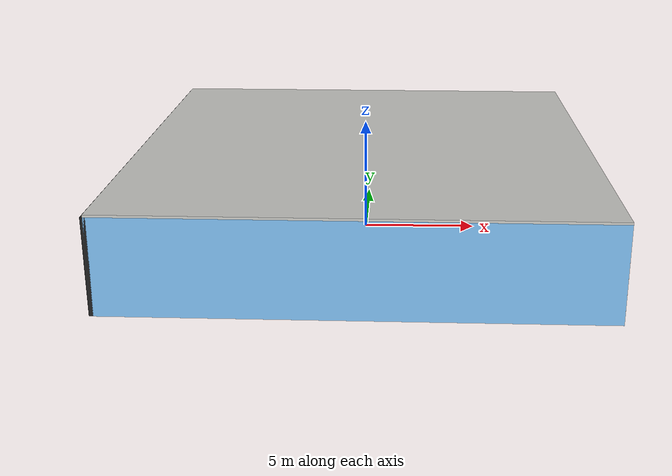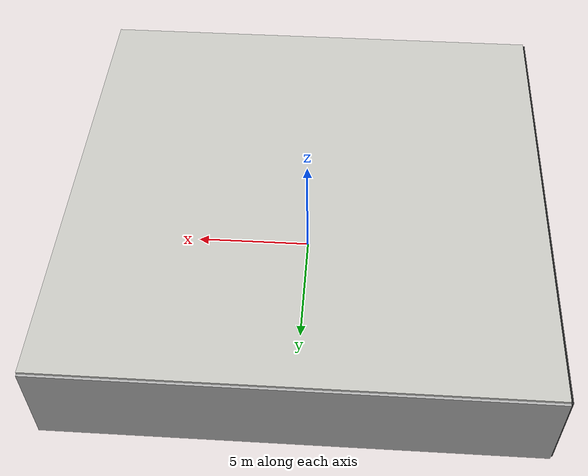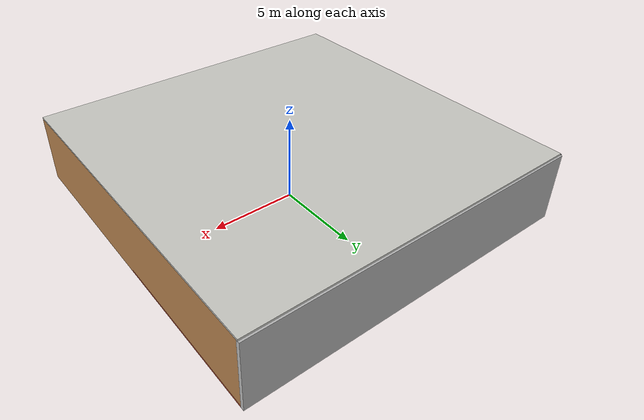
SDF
<sdf version="1.4">
 <world name="default">
  <physics type="ode">
   <max_step_size>0.001</max_step_size>
   <real_time_factor>1</real_time_factor>
   <real_time_update_rate>1000</real_time_update_rate>
   <gravity>0 0 -9.8</gravity>
  </physics>
  <scene><ambient>0.4 0.4 0.4 1</ambient><background>0.7 0.7 0.7 1</background><shadows>1</shadows></scene>
  <model name="Surrounding">
   <static>1</static>
   <link name="Ceiling">
    <collision name="Ceiling_Collision"><geometry><box><size>20 20 0.1</size></box></geometry></collision>
    <visual name="Ceiling_Visual">
     <geometry><box><size>20 20 0.1</size></box></geometry>
     <material>
      <script><uri>file://media/materials/scripts/gazebo.material</uri><name>Gazebo/CeilingTiled</name></script>
     </material>
    </visual>
    <pose>0 0 4.05 0 0 0</pose>
   </link>
   <link name="Wall_South">
    <collision name="Wall_South_Collision">
     <geometry><box><size>20 0 4</size></box></geometry>
     <pose>0 0 2 0 -0 0</pose>
    </collision>
    <visual name="Wall_South_Visual">
     <pose>0 0 2 0 -0 0</pose>
     <geometry><box><size>20 0 4</size></box></geometry>
     <material>
      <script><uri>file://media/materials/scripts/gazebo.material</uri><name>Gazebo/SkyBlue</name></script>
     </material>
    </visual>
    <velocity_decay><linear>0</linear><angular>0</angular></velocity_decay>
    <pose>0 -10 0 0 -0 0</pose>
   </link>
   <link name="Wall_East">
    <collision name="Wall_21_Collision">
     <geometry><box><size>20 0 4</size></box></geometry>
     <pose>0 0 2 0 -0 0</pose>
    </collision>
    <visual name="Wall_21_Visual">
     <pose>0 0 2 0 -0 0</pose>
     <geometry><box><size>20 0 4</size></box></geometry>
     <material>
      <script><uri>file://media/materials/scripts/gazebo.material</uri><name>Gazebo/Wood</name></script>
     </material>
    </visual>
    <velocity_decay><linear>0</linear><angular>0</angular></velocity_decay>
    <pose>10 0 0 0 -0 1.5708</pose>
   </link>
   <link name="Wall_North">
    <collision name="Wall_22_Collision">
     <geometry><box><size>20 0.2 4</size></box></geometry>
     <pose>0 0 2 0 -0 0</pose>
    </collision>
    <visual name="Wall_22_Visual">
     <pose>0 0 2 0 -0 0</pose>
     <geometry><box><size>20 0.2 4</size></box></geometry>
     <material>
      <script><uri>file://media/materials/scripts/gazebo.material</uri><name>Gazebo/Pioneer2Body</name></script>
     </material>
    </visual>
    <velocity_decay><linear>0</linear><angular>0</angular></velocity_decay>
    <pose>0 10 0 0 -0 0</pose>
   </link>
   <link name="Wall_West">
    <collision name="Wall_23_Collision">
     <geometry><box><size>20 0.2 4</size></box></geometry>
     <pose>0 0 2 0 -0 0</pose>
    </collision>
    <visual name="Wall_23_Visual">
     <pose>0 0 2 0 -0 0</pose>
     <geometry><box><size>20 0.2 4</size></box></geometry>
     <material>
      <script><uri>file://media/materials/scripts/gazebo.material</uri><name>Gazebo/Black</name></script>
     </material>
    </visual>
    <velocity_decay><linear>0</linear><angular>0</angular></velocity_decay>
    <pose>-10 0 0 0 0 -1.5708</pose>
   </link>
   <link name="Ground_link">
    <collision name="collision">
     <pose>0 0 .05 0 -0 0</pose>
     <geometry><box><size>20 20 0.1</size></box></geometry>
    </collision>
    <visual name="visual">
     <pose>0 0 .05 0 -0 0</pose>
     <geometry><box><size>20 20 0.1</size></box></geometry>
     <material>
      <script><uri>file://media/materials/scripts/gazebo.material</uri><name>Gazebo/RedTransparent</name></script>
     </material>
    </visual>
   </link>
   <static>1</static>
  </model>
  <spherical_coordinates>
   <surface_model>EARTH_WGS84</surface_model>
   <latitude_deg>0</latitude_deg>
   <longitude_deg>0</longitude_deg>
   <elevation>0</elevation>
   <heading_deg>0</heading_deg>
  </spherical_coordinates>
  <light name="lightball_0" type="diffuse">
   <diffuse>0.8 0.8 0.8 1</diffuse>
   <specular>0.2 0.2 0.2 1</specular>
   <attenuation>
    <range>100</range>
    <constant>0.7</constant>
    <linear>0.01</linear>
    <quadratic>0.001</quadratic>
   </attenuation>
   <direction>-0.5 0.1 -0.9</direction>
   <pose>-1.90548525941 7.1617347618 2.59084584318 0 0 0</pose>
  </light>
  <light name="lightball_1" type="diffuse">
   <diffuse>0.8 0.8 0.8 1</diffuse>
   <specular>0.2 0.2 0.2 1</specular>
   <attenuation>
    <range>100</range>
    <constant>0.7</constant>
    <linear>0.01</linear>
    <quadratic>0.001</quadratic>
   </attenuation>
   <direction>-0.5 0.1 -0.9</direction>
   <pose>-5.03174409896 5.52811208245 1.2201590396 0 0 0</pose>
  </light>
  <light name="lightball_2" type="diffuse">
   <diffuse>0.8 0.8 0.8 1</diffuse>
   <specular>0.2 0.2 0.2 1</specular>
   <attenuation>
    <range>100</range>
    <constant>0.7</constant>
    <linear>0.01</linear>
    <quadratic>0.001</quadratic>
   </attenuation>
   <direction>-0.5 0.1 -0.9</direction>
   <pose>-7.50784723209 9.01970701887 1.63810637243 0 0 0</pose>
  </light>
  <light name="lightball_3" type="diffuse">
   <diffuse>0.8 0.8 0.8 1</diffuse>
   <specular>0.2 0.2 0.2 1</specular>
   <attenuation>
    <range>100</range>
    <constant>0.7</constant>
    <linear>0.01</linear>
    <quadratic>0.001</quadratic>
   </attenuation>
   <direction>-0.5 0.1 -0.9</direction>
   <pose>-4.87492269579 0.860062248187 3.35216173525 0 0 0</pose>
  </light>
  <light name="lightball_4" type="diffuse">
   <diffuse>0.8 0.8 0.8 1</diffuse>
   <specular>0.2 0.2 0.2 1</specular>
   <attenuation>
    <range>100</range>
    <constant>0.7</constant>
    <linear>0.01</linear>
    <quadratic>0.001</quadratic>
   </attenuation>
   <direction>-0.5 0.1 -0.9</direction>
   <pose>2.29204771119 1.83904104383 1.49213533795 0 0 0</pose>
  </light>
  <light name="lightball_5" type="diffuse">
   <diffuse>0.8 0.8 0.8 1</diffuse>
   <specular>0.2 0.2 0.2 1</specular>
   <attenuation>
    <range>100</range>
    <constant>0.7</constant>
    <linear>0.01</linear>
    <quadratic>0.001</quadratic>
   </attenuation>
   <direction>-0.5 0.1 -0.9</direction>
   <pose>-1.93614058295 8.94364221842 2.69175641069 0 0 0</pose>
  </light>
  <light name="lightball_6" type="diffuse">
   <diffuse>0.8 0.8 0.8 1</diffuse>
   <specular>0.2 0.2 0.2 1</specular>
   <attenuation>
    <range>100</range>
    <constant>0.7</constant>
    <linear>0.01</linear>
    <quadratic>0.001</quadratic>
   </attenuation>
   <direction>-0.5 0.1 -0.9</direction>
   <pose>-5.82502808655 0.686657705148 3.3742740253 0 0 0</pose>
  </light>
  <light name="lightball_7" type="diffuse">
   <diffuse>0.8 0.8 0.8 1</diffuse>
   <specular>0.2 0.2 0.2 1</specular>
   <attenuation>
    <range>100</range>
    <constant>0.7</constant>
    <linear>0.01</linear>
    <quadratic>0.001</quadratic>
   </attenuation>
   <direction>-0.5 0.1 -0.9</direction>
   <pose>-8.13301939136 4.91747258797 0.87330985087 0 0 0</pose>
  </light>
  <light name="lightball_8" type="diffuse">
   <diffuse>0.8 0.8 0.8 1</diffuse>
   <specular>0.2 0.2 0.2 1</specular>
   <attenuation>
    <range>100</range>
    <constant>0.7</constant>
    <linear>0.01</linear>
    <quadratic>0.001</quadratic>
   </attenuation>
   <direction>-0.5 0.1 -0.9</direction>
   <pose>5.04698748805 -5.73248068046 3.45111624852 0 0 0</pose>
  </light>
  <light name="lightball_9" type="diffuse">
   <diffuse>0.8 0.8 0.8 1</diffuse>
   <specular>0.2 0.2 0.2 1</specular>
   <attenuation>
    <range>100</range>
    <constant>0.7</constant>
    <linear>0.01</linear>
    <quadratic>0.001</quadratic>
   </attenuation>
   <direction>-0.5 0.1 -0.9</direction>
   <pose>6.85871935874 7.06605576147 3.54543950884 0 0 0</pose>
  </light>
  <light name="lightball_10" type="diffuse">
   <diffuse>0.8 0.8 0.8 1</diffuse>
   <specular>0.2 0.2 0.2 1</specular>
   <attenuation>
    <range>100</range>
    <constant>0.7</constant>
    <linear>0.01</linear>
    <quadratic>0.001</quadratic>
   </attenuation>
   <direction>-0.5 0.1 -0.9</direction>
   <pose>-8.75751941539 -2.06700537611 3.61744120075 0 0 0</pose>
  </light>
  <light name="lightball_11" type="diffuse">
   <diffuse>0.8 0.8 0.8 1</diffuse>
   <specular>0.2 0.2 0.2 1</specular>
   <attenuation>
    <range>100</range>
    <constant>0.7</constant>
    <linear>0.01</linear>
    <quadratic>0.001</quadratic>
   </attenuation>
   <direction>-0.5 0.1 -0.9</direction>
   <pose>4.67712146951 1.63116211411 0.938050612809 0 0 0</pose>
  </light>
  <include><uri>model://table</uri><pose>-7.4610821063 -8.01929066405 0 0 0 0.352412595937</pose></include>
  <include><uri>model://cabinet</uri><pose>-3.99455984464 8.39445468031 0 0 0 1.94222125539</pose></include>
  <include><uri>model://cabinet</uri><pose>-0.59641220055 3.60945830399 0 0 0 1.06675253625</pose></include>
  <include>
   <uri>model://construction_cone</uri>
   <pose>0.984293171642 -2.55375843297 0 0 0 0.0901703758604</pose>
  </include>
  <include><uri>model://table</uri><pose>3.80416848789 8.69664350885 0 0 0 0.492865206497</pose></include>
 </world>
</sdf>

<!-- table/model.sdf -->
<sdf version="1.5">
  <model name="table">
    <static>true</static>
    <link name="link">
      <collision name="surface">
        <pose>0 0 1.0 0 0 0</pose>
        <geometry>
          <box>
            <size>1.5 0.8 0.03</size>
          </box>
        </geometry>
        <surface>
          <friction>
            <ode>
              <mu>0.6</mu>
              <mu2>0.6</mu2>
            </ode>
          </friction>
        </surface>
      </collision>
      <visual name="visual1">
        <pose>0 0 1.0 0 0 0</pose>
        <geometry>
          <box>
            <size>1.5 0.8 0.03</size>
          </box>
        </geometry>
        <material>
          <script>
            <uri>model://media/materials/scripts/gazebo.material</uri>
            <name>Gazebo/Wood</name>
          </script>
        </material>
      </visual>
      <collision name="front_left_leg">
        <pose>0.68 0.38 0.5 0 0 0</pose>
        <geometry>
          <cylinder>
            <radius>0.02</radius>
            <length>1.0</length>
          </cylinder>
        </geometry>
      </collision>
      <visual name="front_left_leg">
        <pose>0.68 0.38 0.5 0 0 0</pose>
        <geometry>
          <cylinder>
            <radius>0.02</radius>
            <length>1.0</length>
          </cylinder>
        </geometry>
        <material>
          <script>
            <uri>model://media/materials/scripts/gazebo.material</uri>
            <name>Gazebo/Grey</name>
          </script>
        </material>
      </visual>
      <collision name="front_right_leg">
        <pose>0.68 -0.38 0.5 0 0 0</pose>
        <geometry>
          <cylinder>
            <radius>0.02</radius>
            <length>1.0</length>
          </cylinder>
        </geometry>
      </collision>
      <visual name="front_right_leg">
        <pose>0.68 -0.38 0.5 0 0 0</pose>
        <geometry>
          <cylinder>
            <radius>0.02</radius>
            <length>1.0</length>
          </cylinder>
        </geometry>
        <material>
          <script>
            <uri>model://media/materials/scripts/gazebo.material</uri>
            <name>Gazebo/Grey</name>
          </script>
        </material>
      </visual>
      <collision name="back_right_leg">
        <pose>-0.68 -0.38 0.5 0 0 0</pose>
        <geometry>
          <cylinder>
            <radius>0.02</radius>
            <length>1.0</length>
          </cylinder>
        </geometry>
      </collision>
      <visual name="back_right_leg">
        <pose>-0.68 -0.38 0.5 0 0 0</pose>
        <geometry>
          <cylinder>
            <radius>0.02</radius>
            <length>1.0</length>
          </cylinder>
        </geometry>
        <material>
          <script>
            <uri>model://media/materials/scripts/gazebo.material</uri>
            <name>Gazebo/Grey</name>
          </script>
        </material>
      </visual>
      <collision name="back_left_leg">
        <pose>-0.68 0.38 0.5 0 0 0</pose>
        <geometry>
          <cylinder>
            <radius>0.02</radius>
            <length>1.0</length>
          </cylinder>
        </geometry>
      </collision>
      <visual name="back_left_leg">
        <pose>-0.68 0.38 0.5 0 0 0</pose>
        <geometry>
          <cylinder>
            <radius>0.02</radius>
            <length>1.0</length>
          </cylinder>
        </geometry>
        <material>
          <script>
            <uri>model://media/materials/scripts/gazebo.material</uri>
            <name>Gazebo/Grey</name>
          </script>
        </material>
      </visual>
    </link>
  </model>
</sdf>

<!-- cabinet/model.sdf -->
<sdf version="1.5">
  <model name="cabinet">
    <static>true</static>
    <link name="cabinet_bottom_plate">
      <inertial>
        <pose>0 0 -1 0 0 0</pose>
        <inertia>
          <ixx>2.050000</ixx>
          <ixy>0</ixy>
          <ixz>0</ixz>
          <iyy>2.050000</iyy>
          <iyz>0</iyz>
          <izz>2.050000</izz>
        </inertia>
        <mass>25.000000</mass>
      </inertial>
      <collision name="cabinet_bottom_plate_geom">
        <pose>0 0 0.010000 0 0 0</pose>
        <geometry>
          <box>
            <size>0.450000 0.450000 0.020000</size>
          </box>
        </geometry>
      </collision>
      <visual name="cabinet_bottom_plate_geom_visual">
        <pose>0 0 0.010000 0 0 0</pose>
        <geometry>
          <box>
            <size>0.450000 0.450000 0.020000</size>
          </box>
        </geometry>
        <material>
          <script>
            <uri>model://media/materials/scripts/gazebo.material</uri>
            <name>Gazebo/Wood</name>
          </script>
        </material>
      </visual>
      <collision name="cabinet_bottom_plate_geom_cabinet_back_plate">
        <pose>0.235000 0 0.510000 0 0 0</pose>
        <geometry>
          <box>
            <size>0.020000 0.450000 1.020000</size>
          </box>
        </geometry>
      </collision>
      <visual name="cabinet_bottom_plate_geom_cabinet_back_plate_visual">
        <pose>0.235000 0 0.510000 0 0 0</pose>
        <geometry>
          <box>
            <size>0.020000 0.450000 1.020000</size>
          </box>
        </geometry>
        <material>
          <script>
            <uri>model://media/materials/scripts/gazebo.material</uri>
            <name>Gazebo/Wood</name>
          </script>
        </material>
      </visual>
      <collision name="cabinet_bottom_plate_geom_cabinet_left_plate">
        <pose>0 0.235000 0.510000 0 0 0</pose>
        <geometry>
          <box>
            <size>0.450000 0.020000 1.020000</size>
          </box>
        </geometry>
      </collision>
      <visual name="cabinet_bottom_plate_geom_cabinet_left_plate_visual">
        <pose>0 0.235000 0.510000 0 0 0</pose>
        <geometry>
          <box>
            <size>0.450000 0.020000 1.020000</size>
          </box>
        </geometry>
        <material>
          <script>
            <uri>model://media/materials/scripts/gazebo.material</uri>
            <name>Gazebo/Wood</name>
          </script>
        </material>
      </visual>
      <collision name="cabinet_bottom_plate_geom_cabinet_middle_plate">
        <pose>0 0 0.510000 0 0 0</pose>
        <geometry>
          <box>
            <size>0.450000 0.450000 0.020000</size>
          </box>
        </geometry>
      </collision>
      <visual name="cabinet_bottom_plate_geom_cabinet_middle_plate_visual">
        <pose>0 0 0.510000 0 0 0</pose>
        <geometry>
          <box>
            <size>0.450000 0.450000 0.020000</size>
          </box>
        </geometry>
        <material>
          <script>
            <uri>model://media/materials/scripts/gazebo.material</uri>
            <name>Gazebo/Wood</name>
          </script>
        </material>
      </visual>
      <collision name="cabinet_bottom_plate_geom_cabinet_right_plate">
        <pose>0 -0.235000 0.510000 0 0 0</pose>
        <geometry>
          <box>
            <size>0.450000 0.020000 1.020000</size>
          </box>
        </geometry>
      </collision>
      <visual name="cabinet_bottom_plate_geom_cabinet_right_plate_visual">
        <pose>0 -0.235000 0.510000 0 0 0</pose>
        <geometry>
          <box>
            <size>0.450000 0.020000 1.020000</size>
          </box>
        </geometry>
        <material>
          <script>
            <uri>model://media/materials/scripts/gazebo.material</uri>
            <name>Gazebo/Wood</name>
          </script>
        </material>
      </visual>
      <collision name="cabinet_bottom_plate_geom_cabinet_top_plate">
        <pose>0 0 1.010000 0 0 0</pose>
        <geometry>
          <box>
            <size>0.450000 0.450000 0.020000</size>
          </box>
        </geometry>
      </collision>
      <visual name="cabinet_bottom_plate_geom_cabinet_top_plate_visual">
        <pose>0 0 1.010000 0 0 0</pose>
        <geometry>
          <box>
            <size>0.450000 0.450000 0.020000</size>
          </box>
        </geometry>
        <material>
          <script>
            <uri>model://media/materials/scripts/gazebo.material</uri>
            <name>Gazebo/Wood</name>
          </script>
        </material>
      </visual>
    </link>
  </model>
</sdf>

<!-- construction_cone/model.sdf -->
<sdf version="1.5">
  <model name="Construction Cone">
    <link name="link">
      <collision name="collision">
        <geometry>
          <mesh>
            <scale>10 10 10</scale>
            <uri>file://isr-testbed/construction_cone/meshes/construction_cone.dae</uri>
          </mesh>
        </geometry>
      </collision>
      <visual name="visual">
        <geometry>
          <mesh>
            <scale>10 10 10</scale>
            <uri>file://isr-testbed/construction_cone/meshes/construction_cone.dae</uri>
          </mesh>
        </geometry>
      </visual>
    </link>
  </model>
</sdf>
